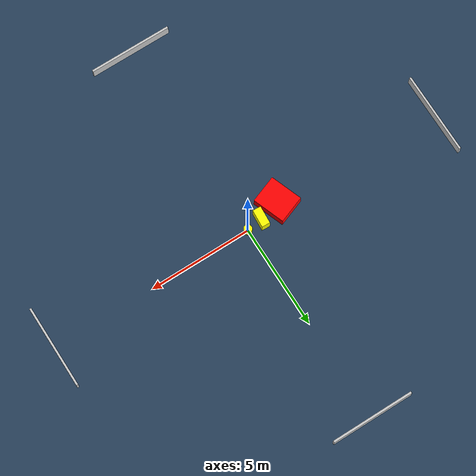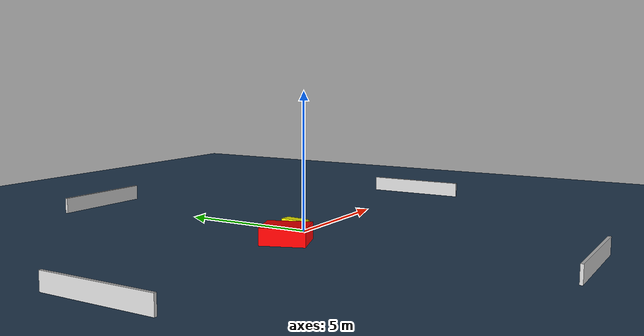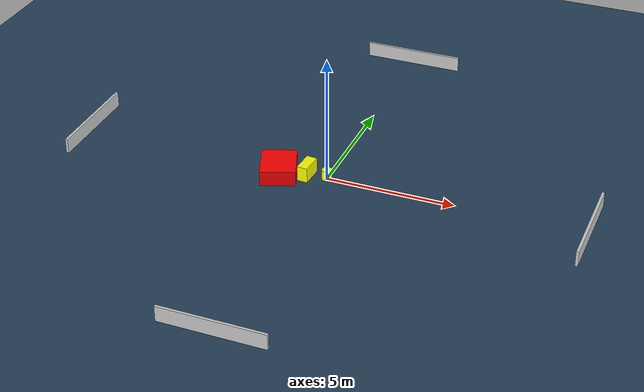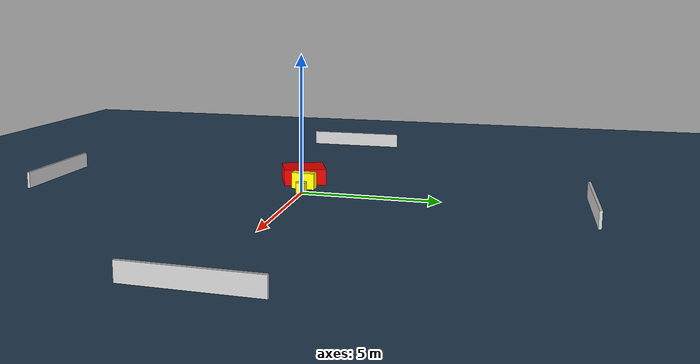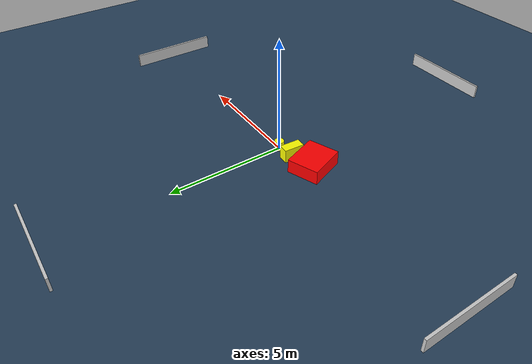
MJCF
<?xml version="1.0" ?>
<mujoco model="generated_environment">
  <option timestep="0.01" integrator="RK4" cone="elliptic"/>
  <default>
    <geom density="1"/>
  </default>
  <asset>
    <texture builtin="gradient" height="3072" name="skybox" rgb1="0.3 0.5 0.7" rgb2="0 0 0" type="skybox" width="512"/>
    <texture builtin="checker" height="300" name="groundplane" rgb1="0.2 0.3 0.4" rgb2="0.1 0.2 0.3" type="2d" width="300"/>
    <material name="groundplane" reflectance="0.2" texrepeat="5 5" texture="groundplane"/>
  </asset>
  <worldbody>
    <light dir="0 0 -1" directional="true" pos="0 0 1.5"/>
    <geom condim="3" friction="0.5 0.005 0.001" material="groundplane" name="floor" pos="0 0 0" size="0 0 0.05" type="plane"/>
    <body name="walls">
      <geom name="wall_1" condim="4" pos="-10.0 0.0 0.3" rgba="0.800000011920929 0.800000011920929 0.800000011920929 1.0" size="0.05 2.0 0.3" type="box"/>
      <geom name="wall_2" condim="4" pos="10.0 0.0 0.3" rgba="0.800000011920929 0.800000011920929 0.800000011920929 1.0" size="0.05 2.0 0.3" type="box"/>
      <geom name="wall_3" condim="4" pos="0.0 -10.0 0.3" rgba="0.800000011920929 0.800000011920929 0.800000011920929 1.0" size="2.0 0.05 0.3" type="box"/>
      <geom name="wall_4" condim="4" pos="0.0 10.0 0.3" rgba="0.800000011920929 0.800000011920929 0.800000011920929 1.0" size="2.0 0.05 0.3" type="box"/>
    </body>
    <body name="robot">
      <joint name="joint_x" type="slide" pos="0 0 0" axis="1 0 0"/>
      <joint name="joint_y" type="slide" pos="0 0 0" axis="0 1 0"/>
      <geom name="robot" type="cylinder" pos="0.0 0.0 0.2" size="0.2 0.2 0.0" mass="5.0" friction="1.0 0.005 0.0001" condim="4" rgba="1.0 1.0 0.0 1.0"/>
    </body>
    <body name="obstacle_1_movable">
      <geom name="obstacle_1_movable" condim="4" pos="-0.7688222087947841 -0.09920760693743905 0.3" euler="0 0 86.3698141970859" friction="0.0 0.005 0.001" rgba="1.0 1.0 0.0 1.0" size="0.4301489742156937 0.20264675748891203 0.3" type="box" mass="0.1"/>
      <joint type="free"/>
    </body>
    <body name="obstacle_2_static">
      <geom name="obstacle_2_static" condim="4" pos="-1.805852313862993 -0.39892783607920046 0.3" euler="0 0 290.4529419949666" friction="0.0 0.005 0.001" rgba="1.0 0.0 0.0 1.0" size="0.7961437209140807 0.6757676515159747 0.3" type="box"/>
    </body>
  </worldbody>
  <actuator>
    <motor name="actuator_x" joint="joint_x" gear="1" ctrlrange="-1 1"/>
    <motor name="actuator_y" joint="joint_y" gear="1" ctrlrange="-1 1"/>
  </actuator>
</mujoco>
